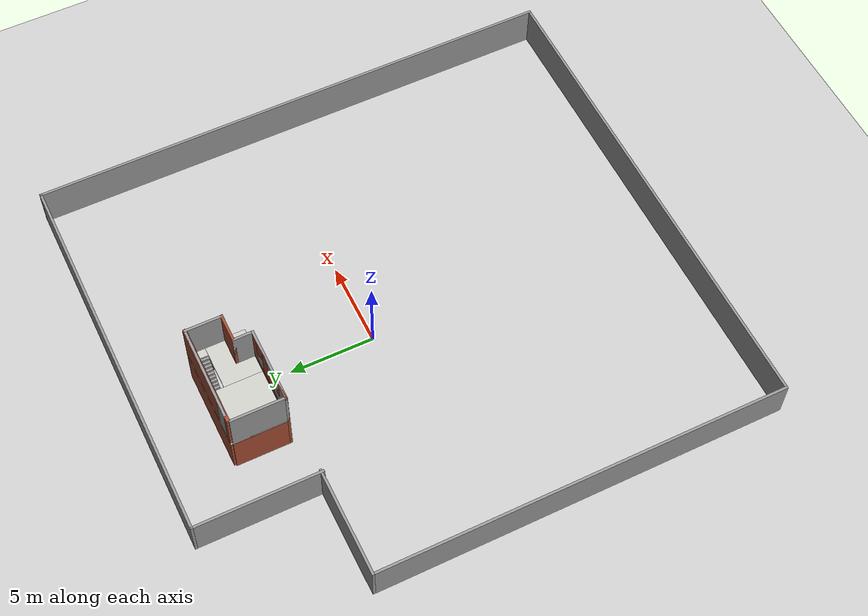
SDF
<sdf version="1.7">
 <world name="default">
  <model name="ground_plane">
   <static>1</static>
   <link name="link">
    <collision name="collision">
     <geometry><plane><normal>0 0 1</normal><size>100 100</size></plane></geometry>
     <surface><friction><ode><mu>100</mu><mu2>50</mu2></ode></friction></surface>
    </collision>
    <visual name="visual">
     <cast_shadows>0</cast_shadows>
     <geometry><plane><normal>0 0 1</normal><size>100 100</size></plane></geometry>
     <material>
      <script><uri>file://media/materials/scripts/gazebo.material</uri><name>Gazebo/Grey</name></script>
     </material>
    </visual>
   </link>
  </model>
  <model name="my_building_1">
   <pose>-0.887527 9.11564 0 0 -0 0</pose>
   <link name="Floor_0">
    <pose>-0 -0.802297 2.5 0 -0 0</pose>
    <visual name="Floor_0_Visual_0">
     <pose>-1.405 0 0.05 0 -0 0</pose>
     <geometry><box><size>3.315 3.38041 0.1</size></box></geometry>
     <material>
      <script><uri>file://media/materials/scripts/gazebo.material</uri><name>Gazebo/CeilingTiled</name></script>
      <ambient>1 1 1 1</ambient>
     </material>
     <meta><layer>1</layer></meta>
    </visual>
    <collision name="Floor_0_Collision_0">
     <geometry><box><size>3.315 3.38041 0.1</size></box></geometry>
     <pose>-1.405 0 0.05 0 -0 0</pose>
    </collision>
    <visual name="Floor_0_Visual_1">
     <pose>1.6575 -0.492703 0.05 0 -0 0</pose>
     <geometry><box><size>2.81 2.395 0.1</size></box></geometry>
     <material>
      <script><uri>file://media/materials/scripts/gazebo.material</uri><name>Gazebo/CeilingTiled</name></script>
      <ambient>1 1 1 1</ambient>
     </material>
     <meta><layer>1</layer></meta>
    </visual>
    <collision name="Floor_0_Collision_1">
     <geometry><box><size>2.81 2.395 0.1</size></box></geometry>
     <pose>1.6575 -0.492703 0.05 0 -0 0</pose>
    </collision>
    <visual name="Floor_0_Visual_2">
     <pose>2.7375 1.1975 0.05 0 -0 0</pose>
     <geometry><box><size>0.65 0.985407 0.1</size></box></geometry>
     <material>
      <script><uri>file://media/materials/scripts/gazebo.material</uri><name>Gazebo/CeilingTiled</name></script>
      <ambient>1 1 1 1</ambient>
     </material>
     <meta><layer>1</layer></meta>
    </visual>
    <collision name="Floor_0_Collision_2">
     <geometry><box><size>0.65 0.985407 0.1</size></box></geometry>
     <pose>2.7375 1.1975 0.05 0 -0 0</pose>
    </collision>
    <visual name="Floor_0_Visual_3">
     <pose>1.3325 1.5275 0.05 0 -0 0</pose>
     <geometry><box><size>2.16 0.325407 0.1</size></box></geometry>
     <material>
      <script><uri>file://media/materials/scripts/gazebo.material</uri><name>Gazebo/CeilingTiled</name></script>
      <ambient>1 1 1 1</ambient>
     </material>
     <meta><layer>1</layer></meta>
    </visual>
    <collision name="Floor_0_Collision_3">
     <geometry><box><size>2.16 0.325407 0.1</size></box></geometry>
     <pose>1.3325 1.5275 0.05 0 -0 0</pose>
    </collision>
   </link>
   <link name="Stairs_0">
    <visual name="Stairs_0_Visual_0">
     <pose>0.3245 0.2325 0.083333 0 -0 1.5708</pose>
     <geometry><box><size>0.66 0.144 0.166667</size></box></geometry>
     <material>
      <script><uri>file://media/materials/scripts/gazebo.material</uri><name>Gazebo/Grey</name></script>
      <ambient>1 1 1 1</ambient>
     </material>
     <meta><layer>0</layer></meta>
    </visual>
    <collision name="Stairs_0_Collision_0">
     <geometry><box><size>0.66 0.144 0.166667</size></box></geometry>
     <pose>0.3245 0.2325 0.083333 0 -0 1.5708</pose>
    </collision>
    <visual name="Stairs_0_Visual_1">
     <pose>0.4685 0.2325 0.25 0 -0 1.5708</pose>
     <geometry><box><size>0.66 0.144 0.166667</size></box></geometry>
     <material>
      <script><uri>file://media/materials/scripts/gazebo.material</uri><name>Gazebo/Grey</name></script>
      <ambient>1 1 1 1</ambient>
     </material>
     <meta><layer>0</layer></meta>
    </visual>
    <collision name="Stairs_0_Collision_1">
     <geometry><box><size>0.66 0.144 0.166667</size></box></geometry>
     <pose>0.4685 0.2325 0.25 0 -0 1.5708</pose>
    </collision>
    <visual name="Stairs_0_Visual_2">
     <pose>0.6125 0.2325 0.416667 0 -0 1.5708</pose>
     <geometry><box><size>0.66 0.144 0.166667</size></box></geometry>
     <material>
      <script><uri>file://media/materials/scripts/gazebo.material</uri><name>Gazebo/Grey</name></script>
      <ambient>1 1 1 1</ambient>
     </material>
     <meta><layer>0</layer></meta>
    </visual>
    <collision name="Stairs_0_Collision_2">
     <geometry><box><size>0.66 0.144 0.166667</size></box></geometry>
     <pose>0.6125 0.2325 0.416667 0 -0 1.5708</pose>
    </collision>
    <visual name="Stairs_0_Visual_3">
     <pose>0.7565 0.2325 0.583333 0 -0 1.5708</pose>
     <geometry><box><size>0.66 0.144 0.166667</size></box></geometry>
     <material>
      <script><uri>file://media/materials/scripts/gazebo.material</uri><name>Gazebo/Grey</name></script>
      <ambient>1 1 1 1</ambient>
     </material>
     <meta><layer>0</layer></meta>
    </visual>
    <collision name="Stairs_0_Collision_3">
     <geometry><box><size>0.66 0.144 0.166667</size></box></geometry>
     <pose>0.7565 0.2325 0.583333 0 -0 1.5708</pose>
    </collision>
    <visual name="Stairs_0_Visual_4">
     <pose>0.9005 0.2325 0.75 0 -0 1.5708</pose>
     <geometry><box><size>0.66 0.144 0.166667</size></box></geometry>
     <material>
      <script><uri>file://media/materials/scripts/gazebo.material</uri><name>Gazebo/Grey</name></script>
      <ambient>1 1 1 1</ambient>
     </material>
     <meta><layer>0</layer></meta>
    </visual>
    <collision name="Stairs_0_Collision_4">
     <geometry><box><size>0.66 0.144 0.166667</size></box></geometry>
     <pose>0.9005 0.2325 0.75 0 -0 1.5708</pose>
    </collision>
    <visual name="Stairs_0_Visual_5">
     <pose>1.0445 0.2325 0.916667 0 -0 1.5708</pose>
     <geometry><box><size>0.66 0.144 0.166667</size></box></geometry>
     <material>
      <script><uri>file://media/materials/scripts/gazebo.material</uri><name>Gazebo/Grey</name></script>
      <ambient>1 1 1 1</ambient>
     </material>
     <meta><layer>0</layer></meta>
    </visual>
    <collision name="Stairs_0_Collision_5">
     <geometry><box><size>0.66 0.144 0.166667</size></box></geometry>
     <pose>1.0445 0.2325 0.916667 0 -0 1.5708</pose>
    </collision>
    <visual name="Stairs_0_Visual_6">
     <pose>1.1885 0.2325 1.08333 0 -0 1.5708</pose>
     <geometry><box><size>0.66 0.144 0.166667</size></box></geometry>
     <material>
      <script><uri>file://media/materials/scripts/gazebo.material</uri><name>Gazebo/Grey</name></script>
      <ambient>1 1 1 1</ambient>
     </material>
     <meta><layer>0</layer></meta>
    </visual>
    <collision name="Stairs_0_Collision_6">
     <geometry><box><size>0.66 0.144 0.166667</size></box></geometry>
     <pose>1.1885 0.2325 1.08333 0 -0 1.5708</pose>
    </collision>
    <visual name="Stairs_0_Visual_7">
     <pose>1.3325 0.2325 1.25 0 -0 1.5708</pose>
     <geometry><box><size>0.66 0.144 0.166667</size></box></geometry>
     <material>
      <script><uri>file://media/materials/scripts/gazebo.material</uri><name>Gazebo/Grey</name></script>
      <ambient>1 1 1 1</ambient>
     </material>
     <meta><layer>0</layer></meta>
    </visual>
    <collision name="Stairs_0_Collision_7">
     <geometry><box><size>0.66 0.144 0.166667</size></box></geometry>
     <pose>1.3325 0.2325 1.25 0 -0 1.5708</pose>
    </collision>
    <visual name="Stairs_0_Visual_8">
     <pose>1.4765 0.2325 1.41667 0 -0 1.5708</pose>
     <geometry><box><size>0.66 0.144 0.166667</size></box></geometry>
     <material>
      <script><uri>file://media/materials/scripts/gazebo.material</uri><name>Gazebo/Grey</name></script>
      <ambient>1 1 1 1</ambient>
     </material>
     <meta><layer>0</layer></meta>
    </visual>
    <collision name="Stairs_0_Collision_8">
     <geometry><box><size>0.66 0.144 0.166667</size></box></geometry>
     <pose>1.4765 0.2325 1.41667 0 -0 1.5708</pose>
    </collision>
    <visual name="Stairs_0_Visual_9">
     <pose>1.6205 0.2325 1.58333 0 -0 1.5708</pose>
     <geometry><box><size>0.66 0.144 0.166667</size></box></geometry>
     <material>
      <script><uri>file://media/materials/scripts/gazebo.material</uri><name>Gazebo/Grey</name></script>
      <ambient>1 1 1 1</ambient>
     </material>
     <meta><layer>0</layer></meta>
    </visual>
    <collision name="Stairs_0_Collision_9">
     <geometry><box><size>0.66 0.144 0.166667</size></box></geometry>
     <pose>1.6205 0.2325 1.58333 0 -0 1.5708</pose>
    </collision>
    <visual name="Stairs_0_Visual_10">
     <pose>1.7645 0.2325 1.75 0 -0 1.5708</pose>
     <geometry><box><size>0.66 0.144 0.166667</size></box></geometry>
     <material>
      <script><uri>file://media/materials/scripts/gazebo.material</uri><name>Gazebo/Grey</name></script>
      <ambient>1 1 1 1</ambient>
     </material>
     <meta><layer>0</layer></meta>
    </visual>
    <collision name="Stairs_0_Collision_10">
     <geometry><box><size>0.66 0.144 0.166667</size></box></geometry>
     <pose>1.7645 0.2325 1.75 0 -0 1.5708</pose>
    </collision>
    <visual name="Stairs_0_Visual_11">
     <pose>1.9085 0.2325 1.91667 0 -0 1.5708</pose>
     <geometry><box><size>0.66 0.144 0.166667</size></box></geometry>
     <material>
      <script><uri>file://media/materials/scripts/gazebo.material</uri><name>Gazebo/Grey</name></script>
      <ambient>1 1 1 1</ambient>
     </material>
     <meta><layer>0</layer></meta>
    </visual>
    <collision name="Stairs_0_Collision_11">
     <geometry><box><size>0.66 0.144 0.166667</size></box></geometry>
     <pose>1.9085 0.2325 1.91667 0 -0 1.5708</pose>
    </collision>
    <visual name="Stairs_0_Visual_12">
     <pose>2.0525 0.2325 2.08333 0 -0 1.5708</pose>
     <geometry><box><size>0.66 0.144 0.166667</size></box></geometry>
     <material>
      <script><uri>file://media/materials/scripts/gazebo.material</uri><name>Gazebo/Grey</name></script>
      <ambient>1 1 1 1</ambient>
     </material>
     <meta><layer>0</layer></meta>
    </visual>
    <collision name="Stairs_0_Collision_12">
     <geometry><box><size>0.66 0.144 0.166667</size></box></geometry>
     <pose>2.0525 0.2325 2.08333 0 -0 1.5708</pose>
    </collision>
    <visual name="Stairs_0_Visual_13">
     <pose>2.1965 0.2325 2.25 0 -0 1.5708</pose>
     <geometry><box><size>0.66 0.144 0.166667</size></box></geometry>
     <material>
      <script><uri>file://media/materials/scripts/gazebo.material</uri><name>Gazebo/Grey</name></script>
      <ambient>1 1 1 1</ambient>
     </material>
     <meta><layer>0</layer></meta>
    </visual>
    <collision name="Stairs_0_Collision_13">
     <geometry><box><size>0.66 0.144 0.166667</size></box></geometry>
     <pose>2.1965 0.2325 2.25 0 -0 1.5708</pose>
    </collision>
    <visual name="Stairs_0_Visual_14">
     <pose>2.3405 0.2325 2.41667 0 -0 1.5708</pose>
     <geometry><box><size>0.66 0.144 0.166667</size></box></geometry>
     <material>
      <script><uri>file://media/materials/scripts/gazebo.material</uri><name>Gazebo/Grey</name></script>
      <ambient>1 1 1 1</ambient>
     </material>
     <meta><layer>0</layer></meta>
    </visual>
    <collision name="Stairs_0_Collision_14">
     <geometry><box><size>0.66 0.144 0.166667</size></box></geometry>
     <pose>2.3405 0.2325 2.41667 0 -0 1.5708</pose>
    </collision>
   </link>
   <link name="Wall_0">
    <collision name="Wall_0_Collision">
     <geometry><box><size>6.05 0.2 2.5</size></box></geometry>
     <pose>0 0 1.25 0 -0 0</pose>
    </collision>
    <visual name="Wall_0_Visual">
     <pose>0 0 1.25 0 -0 0</pose>
     <geometry><box><size>6.05 0.2 2.5</size></box></geometry>
     <material>
      <script><uri>file://media/materials/scripts/gazebo.material</uri><name>Gazebo/Bricks</name></script>
      <ambient>1 1 1 1</ambient>
     </material>
     <meta><layer>0</layer></meta>
    </visual>
    <pose>0.0375 0.7825 0 0 -0 0</pose>
   </link>
   <link name="Wall_1">
    <collision name="Wall_1_Collision">
     <geometry><box><size>2.25 0.15 1.5</size></box></geometry>
     <pose>0 0 0.75 0 -0 0</pose>
    </collision>
    <visual name="Wall_1_Visual">
     <pose>0 0 0.75 0 -0 0</pose>
     <geometry><box><size>2.25 0.15 1.5</size></box></geometry>
     <material>
      <script><uri>file://media/materials/scripts/gazebo.material</uri><name>Gazebo/Bricks</name></script>
      <ambient>1 1 1 1</ambient>
     </material>
     <meta><layer>0</layer></meta>
    </visual>
    <pose>2.9625 -0.2675 0 0 -0 -1.5708</pose>
   </link>
   <link name="Wall_10">
    <collision name="Wall_10_Collision">
     <geometry><box><size>1.25 0.15 2.5</size></box></geometry>
     <pose>0 0 1.25 0 -0 0</pose>
    </collision>
    <visual name="Wall_10_Visual">
     <pose>0 0 1.25 0 -0 0</pose>
     <geometry><box><size>1.25 0.15 2.5</size></box></geometry>
     <material>
      <script><uri>file://media/materials/scripts/gazebo.material</uri><name>Gazebo/Grey</name></script>
      <ambient>1 1 1 1</ambient>
     </material>
     <meta><layer>1</layer></meta>
    </visual>
    <pose>1.3625 -1.8675 2.5 0 -0 -1.5708</pose>
   </link>
   <link name="Wall_11">
    <collision name="Wall_11_Collision">
     <geometry><box><size>4.5 0.15 2.5</size></box></geometry>
     <pose>0 0 1.25 0 -0 0</pose>
    </collision>
    <visual name="Wall_11_Visual">
     <pose>0 0 1.25 0 -0 0</pose>
     <geometry><box><size>4.5 0.15 2.5</size></box></geometry>
     <material>
      <script><uri>file://media/materials/scripts/gazebo.material</uri><name>Gazebo/Grey</name></script>
      <ambient>1 1 1 1</ambient>
     </material>
     <meta><layer>1</layer></meta>
    </visual>
    <pose>-0.8125 -2.4175 2.5 0 -0 3.14159</pose>
   </link>
   <link name="Wall_12">
    <collision name="Wall_12_Collision">
     <geometry><box><size>3.25 0.15 2.5</size></box></geometry>
     <pose>0 0 1.25 0 -0 0</pose>
    </collision>
    <visual name="Wall_12_Visual">
     <pose>0 0 1.25 0 -0 0</pose>
     <geometry><box><size>3.25 0.15 2.5</size></box></geometry>
     <material>
      <script><uri>file://media/materials/scripts/gazebo.material</uri><name>Gazebo/Grey</name></script>
      <ambient>1 1 1 1</ambient>
     </material>
     <meta><layer>1</layer></meta>
    </visual>
    <pose>-2.9875 -0.8675 2.5 0 -0 1.5708</pose>
   </link>
   <link name="Wall_14">
    <collision name="Wall_14_Collision">
     <geometry><box><size>5.67008 0.15 2.5</size></box></geometry>
     <pose>0 0 1.25 0 -0 0</pose>
    </collision>
    <visual name="Wall_14_Visual">
     <pose>0 0 1.25 0 -0 0</pose>
     <geometry><box><size>5.67008 0.15 2.5</size></box></geometry>
     <material>
      <script><uri>file://media/materials/scripts/gazebo.material</uri><name>Gazebo/Grey</name></script>
      <ambient>1 1 1 1</ambient>
     </material>
     <meta><layer>1</layer></meta>
    </visual>
    <pose>0.2025 0.7975 2.5 0 -0 -0.005435</pose>
   </link>
   <link name="Wall_15">
    <collision name="Wall_15_Collision">
     <geometry><box><size>2.25 0.15 2.5</size></box></geometry>
     <pose>0 0 1.25 0 -0 0</pose>
    </collision>
    <visual name="Wall_15_Visual">
     <pose>0 0 1.25 0 -0 0</pose>
     <geometry><box><size>2.25 0.15 2.5</size></box></geometry>
     <material>
      <script><uri>file://media/materials/scripts/gazebo.material</uri><name>Gazebo/Grey</name></script>
      <ambient>1 1 1 1</ambient>
     </material>
     <meta><layer>1</layer></meta>
    </visual>
    <pose>2.9625 -0.2675 2.5 0 -0 -1.5708</pose>
   </link>
   <link name="Wall_16">
    <collision name="Wall_16_Collision">
     <geometry><box><size>1.75 0.15 2.5</size></box></geometry>
     <pose>0 0 1.25 0 -0 0</pose>
    </collision>
    <visual name="Wall_16_Visual">
     <pose>0 0 1.25 0 -0 0</pose>
     <geometry><box><size>1.75 0.15 2.5</size></box></geometry>
     <material>
      <script><uri>file://media/materials/scripts/gazebo.material</uri><name>Gazebo/Bricks</name></script>
      <ambient>1 1 1 1</ambient>
     </material>
     <meta><layer>1</layer></meta>
    </visual>
    <pose>2.1625 -1.3175 2.5 0 -0 3.14159</pose>
   </link>
   <link name="Wall_17">
    <collision name="Wall_17_Collision">
     <geometry><box><size>1.25 0.15 2.5</size></box></geometry>
     <pose>0 0 1.25 0 -0 0</pose>
    </collision>
    <visual name="Wall_17_Visual">
     <pose>0 0 1.25 0 -0 0</pose>
     <geometry><box><size>1.25 0.15 2.5</size></box></geometry>
     <material>
      <script><uri>file://media/materials/scripts/gazebo.material</uri><name>Gazebo/Grey</name></script>
      <ambient>1 1 1 1</ambient>
     </material>
     <meta><layer>1</layer></meta>
    </visual>
    <pose>1.3625 -1.8675 2.5 0 -0 -1.5708</pose>
   </link>
   <link name="Wall_18">
    <pose>-0.8125 -2.4175 2.5 0 -0 3.14159</pose>
    <visual name="Wall_18_Visual_0">
     <pose>-1.9275 0 1.25 0 -0 0</pose>
     <geometry><box><size>0.645 0.15 2.5</size></box></geometry>
     <material>
      <script><uri>file://media/materials/scripts/gazebo.material</uri><name>Gazebo/Bricks</name></script>
      <ambient>1 1 1 1</ambient>
     </material>
     <meta><layer>1</layer></meta>
    </visual>
    <collision name="Wall_18_Collision_0">
     <geometry><box><size>0.645 0.15 2.5</size></box></geometry>
     <pose>-1.9275 0 1.25 0 -0 0</pose>
    </collision>
    <visual name="Wall_18_Visual_1">
     <pose>0.3225 0 0.25 0 -0 0</pose>
     <geometry><box><size>3.855 0.15 0.5</size></box></geometry>
     <material>
      <script><uri>file://media/materials/scripts/gazebo.material</uri><name>Gazebo/Bricks</name></script>
      <ambient>1 1 1 1</ambient>
     </material>
     <meta><layer>1</layer></meta>
    </visual>
    <collision name="Wall_18_Collision_1">
     <geometry><box><size>3.855 0.15 0.5</size></box></geometry>
     <pose>0.3225 0 0.25 0 -0 0</pose>
    </collision>
    <visual name="Wall_18_Visual_2">
     <pose>-0.095 0 1.5 0 -0 0</pose>
     <geometry><box><size>1.42 0.15 2</size></box></geometry>
     <material>
      <script><uri>file://media/materials/scripts/gazebo.material</uri><name>Gazebo/Bricks</name></script>
      <ambient>1 1 1 1</ambient>
     </material>
     <meta><layer>1</layer></meta>
    </visual>
    <collision name="Wall_18_Collision_2">
     <geometry><box><size>1.42 0.15 2</size></box></geometry>
     <pose>-0.095 0 1.5 0 -0 0</pose>
    </collision>
    <visual name="Wall_18_Visual_3">
     <pose>1.8325 0 1.5 0 -0 0</pose>
     <geometry><box><size>0.835 0.15 2</size></box></geometry>
     <material>
      <script><uri>file://media/materials/scripts/gazebo.material</uri><name>Gazebo/Bricks</name></script>
      <ambient>1 1 1 1</ambient>
     </material>
     <meta><layer>1</layer></meta>
    </visual>
    <collision name="Wall_18_Collision_3">
     <geometry><box><size>0.835 0.15 2</size></box></geometry>
     <pose>1.8325 0 1.5 0 -0 0</pose>
    </collision>
    <visual name="Wall_18_Visual_4">
     <pose>-1.205 0 1.9 0 -0 0</pose>
     <geometry><box><size>0.8 0.15 1.2</size></box></geometry>
     <material>
      <script><uri>file://media/materials/scripts/gazebo.material</uri><name>Gazebo/Bricks</name></script>
      <ambient>1 1 1 1</ambient>
     </material>
     <meta><layer>1</layer></meta>
    </visual>
    <collision name="Wall_18_Collision_4">
     <geometry><box><size>0.8 0.15 1.2</size></box></geometry>
     <pose>-1.205 0 1.9 0 -0 0</pose>
    </collision>
    <visual name="Wall_18_Visual_5">
     <pose>1.015 0 1.9 0 -0 0</pose>
     <geometry><box><size>0.8 0.15 1.2</size></box></geometry>
     <material>
      <script><uri>file://media/materials/scripts/gazebo.material</uri><name>Gazebo/Bricks</name></script>
      <ambient>1 1 1 1</ambient>
     </material>
     <meta><layer>1</layer></meta>
    </visual>
    <collision name="Wall_18_Collision_5">
     <geometry><box><size>0.8 0.15 1.2</size></box></geometry>
     <pose>1.015 0 1.9 0 -0 0</pose>
    </collision>
   </link>
   <link name="Wall_19">
    <collision name="Wall_19_Collision">
     <geometry><box><size>3.25 0.15 2.5</size></box></geometry>
     <pose>0 0 1.25 0 -0 0</pose>
    </collision>
    <visual name="Wall_19_Visual">
     <pose>0 0 1.25 0 -0 0</pose>
     <geometry><box><size>3.25 0.15 2.5</size></box></geometry>
     <material>
      <script><uri>file://media/materials/scripts/gazebo.material</uri><name>Gazebo/Bricks</name></script>
      <ambient>1 1 1 1</ambient>
     </material>
     <meta><layer>1</layer></meta>
    </visual>
    <pose>-2.9875 -0.8675 2.5 0 -0 1.5708</pose>
   </link>
   <link name="Wall_2">
    <collision name="Wall_2_Collision">
     <geometry><box><size>1.75 0.15 2.5</size></box></geometry>
     <pose>0 0 1.25 0 -0 0</pose>
    </collision>
    <visual name="Wall_2_Visual">
     <pose>0 0 1.25 0 -0 0</pose>
     <geometry><box><size>1.75 0.15 2.5</size></box></geometry>
     <material>
      <script><uri>file://media/materials/scripts/gazebo.material</uri><name>Gazebo/Bricks</name></script>
      <ambient>1 1 1 1</ambient>
     </material>
     <meta><layer>0</layer></meta>
    </visual>
    <pose>2.1625 -1.3175 0 0 -0 3.14159</pose>
   </link>
   <link name="Wall_3">
    <collision name="Wall_3_Collision">
     <geometry><box><size>1.25 0.15 2.5</size></box></geometry>
     <pose>0 0 1.25 0 -0 0</pose>
    </collision>
    <visual name="Wall_3_Visual">
     <pose>0 0 1.25 0 -0 0</pose>
     <geometry><box><size>1.25 0.15 2.5</size></box></geometry>
     <material>
      <script><uri>file://media/materials/scripts/gazebo.material</uri><name>Gazebo/Grey</name></script>
      <ambient>1 1 1 1</ambient>
     </material>
     <meta><layer>0</layer></meta>
    </visual>
    <pose>1.3625 -1.8675 0 0 -0 -1.5708</pose>
   </link>
   <link name="Wall_4">
    <pose>-0.8125 -2.4175 0 0 -0 3.14159</pose>
    <visual name="Wall_4_Visual_0">
     <pose>-1.4025 0 1.25 0 -0 0</pose>
     <geometry><box><size>1.695 0.15 2.5</size></box></geometry>
     <material>
      <script><uri>file://media/materials/scripts/gazebo.material</uri><name>Gazebo/Bricks</name></script>
      <ambient>1 1 1 1</ambient>
     </material>
     <meta><layer>0</layer></meta>
    </visual>
    <collision name="Wall_4_Collision_0">
     <geometry><box><size>1.695 0.15 2.5</size></box></geometry>
     <pose>-1.4025 0 1.25 0 -0 0</pose>
    </collision>
    <visual name="Wall_4_Visual_1">
     <pose>0.54 0 1.25 0 -0 0</pose>
     <geometry><box><size>0.39 0.15 2.5</size></box></geometry>
     <material>
      <script><uri>file://media/materials/scripts/gazebo.material</uri><name>Gazebo/Bricks</name></script>
      <ambient>1 1 1 1</ambient>
     </material>
     <meta><layer>0</layer></meta>
    </visual>
    <collision name="Wall_4_Collision_1">
     <geometry><box><size>0.39 0.15 2.5</size></box></geometry>
     <pose>0.54 0 1.25 0 -0 0</pose>
    </collision>
    <visual name="Wall_4_Visual_2">
     <pose>1.4925 0 0.25 0 -0 0</pose>
     <geometry><box><size>1.515 0.15 0.5</size></box></geometry>
     <material>
      <script><uri>file://media/materials/scripts/gazebo.material</uri><name>Gazebo/Bricks</name></script>
      <ambient>1 1 1 1</ambient>
     </material>
     <meta><layer>0</layer></meta>
    </visual>
    <collision name="Wall_4_Collision_2">
     <geometry><box><size>1.515 0.15 0.5</size></box></geometry>
     <pose>1.4925 0 0.25 0 -0 0</pose>
    </collision>
    <visual name="Wall_4_Visual_3">
     <pose>1.8925 0 1.5 0 -0 0</pose>
     <geometry><box><size>0.715 0.15 2</size></box></geometry>
     <material>
      <script><uri>file://media/materials/scripts/gazebo.material</uri><name>Gazebo/Bricks</name></script>
      <ambient>1 1 1 1</ambient>
     </material>
     <meta><layer>0</layer></meta>
    </visual>
    <collision name="Wall_4_Collision_3">
     <geometry><box><size>0.715 0.15 2</size></box></geometry>
     <pose>1.8925 0 1.5 0 -0 0</pose>
    </collision>
    <visual name="Wall_4_Visual_4">
     <pose>1.135 0 1.9 0 -0 0</pose>
     <geometry><box><size>0.8 0.15 1.2</size></box></geometry>
     <material>
      <script><uri>file://media/materials/scripts/gazebo.material</uri><name>Gazebo/Bricks</name></script>
      <ambient>1 1 1 1</ambient>
     </material>
     <meta><layer>0</layer></meta>
    </visual>
    <collision name="Wall_4_Collision_4">
     <geometry><box><size>0.8 0.15 1.2</size></box></geometry>
     <pose>1.135 0 1.9 0 -0 0</pose>
    </collision>
    <visual name="Wall_4_Visual_5">
     <pose>-0.105 0 2.25 0 -0 0</pose>
     <geometry><box><size>0.9 0.15 0.5</size></box></geometry>
     <material>
      <script><uri>file://media/materials/scripts/gazebo.material</uri><name>Gazebo/Bricks</name></script>
      <ambient>1 1 1 1</ambient>
     </material>
     <meta><layer>0</layer></meta>
    </visual>
    <collision name="Wall_4_Collision_5">
     <geometry><box><size>0.9 0.15 0.5</size></box></geometry>
     <pose>-0.105 0 2.25 0 -0 0</pose>
    </collision>
   </link>
   <link name="Wall_5">
    <collision name="Wall_5_Collision">
     <geometry><box><size>3.25 0.15 2.5</size></box></geometry>
     <pose>0 0 1.25 0 -0 0</pose>
    </collision>
    <visual name="Wall_5_Visual">
     <pose>0 0 1.25 0 -0 0</pose>
     <geometry><box><size>3.25 0.15 2.5</size></box></geometry>
     <material>
      <script><uri>file://media/materials/scripts/gazebo.material</uri><name>Gazebo/Bricks</name></script>
      <ambient>1 1 1 1</ambient>
     </material>
     <meta><layer>0</layer></meta>
    </visual>
    <pose>-2.9875 -0.8675 0 0 -0 1.5708</pose>
   </link>
   <link name="Wall_7">
    <collision name="Wall_7_Collision">
     <geometry><box><size>6.05 0.2 2.5</size></box></geometry>
     <pose>0 0 1.25 0 -0 0</pose>
    </collision>
    <visual name="Wall_7_Visual">
     <pose>0 0 1.25 0 -0 0</pose>
     <geometry><box><size>6.05 0.2 2.5</size></box></geometry>
     <material>
      <script><uri>file://media/materials/scripts/gazebo.material</uri><name>Gazebo/Bricks</name></script>
      <ambient>1 1 1 1</ambient>
     </material>
     <meta><layer>1</layer></meta>
    </visual>
    <pose>0.0375 0.7825 2.5 0 -0 0</pose>
   </link>
   <link name="Wall_8">
    <collision name="Wall_8_Collision">
     <geometry><box><size>2.25 0.15 1.5</size></box></geometry>
     <pose>0 0 0.75 0 -0 0</pose>
    </collision>
    <visual name="Wall_8_Visual">
     <pose>0 0 0.75 0 -0 0</pose>
     <geometry><box><size>2.25 0.15 1.5</size></box></geometry>
     <material>
      <script><uri>file://media/materials/scripts/gazebo.material</uri><name>Gazebo/Grey</name></script>
      <ambient>1 1 1 1</ambient>
     </material>
     <meta><layer>1</layer></meta>
    </visual>
    <pose>2.9625 -0.2675 2.5 0 -0 -1.5708</pose>
   </link>
   <link name="Wall_9">
    <collision name="Wall_9_Collision">
     <geometry><box><size>1.75 0.15 2.5</size></box></geometry>
     <pose>0 0 1.25 0 -0 0</pose>
    </collision>
    <visual name="Wall_9_Visual">
     <pose>0 0 1.25 0 -0 0</pose>
     <geometry><box><size>1.75 0.15 2.5</size></box></geometry>
     <material>
      <script><uri>file://media/materials/scripts/gazebo.material</uri><name>Gazebo/Grey</name></script>
      <ambient>1 1 1 1</ambient>
     </material>
     <meta><layer>1</layer></meta>
    </visual>
    <pose>2.1625 -1.3175 2.5 0 -0 3.14159</pose>
   </link>
   <static>1</static>
  </model>
  <model name="my_wall">
   <pose>0.944283 -2.1803 0 0 -0 0</pose>
   <link name="Wall_26">
    <collision name="Wall_26_Collision">
     <geometry><box><size>6.5 0.15 2.5</size></box></geometry>
     <pose>0 0 1.25 0 -0 0</pose>
    </collision>
    <visual name="Wall_26_Visual">
     <pose>0 0 1.25 0 -0 0</pose>
     <geometry><box><size>6.5 0.15 2.5</size></box></geometry>
     <material>
      <script><uri>file://media/materials/scripts/gazebo.material</uri><name>Gazebo/Grey</name></script>
      <ambient>1 1 1 1</ambient>
     </material>
     <meta><layer>0</layer></meta>
    </visual>
    <pose>-11.375 8.55 0 0 -0 3.14159</pose>
   </link>
   <link name="Wall_27">
    <collision name="Wall_27_Collision">
     <geometry><box><size>24.5 0.15 2.5</size></box></geometry>
     <pose>0 0 1.25 0 -0 0</pose>
    </collision>
    <visual name="Wall_27_Visual">
     <pose>0 0 1.25 0 -0 0</pose>
     <geometry><box><size>24.5 0.15 2.5</size></box></geometry>
     <material>
      <script><uri>file://media/materials/scripts/gazebo.material</uri><name>Gazebo/Grey</name></script>
      <ambient>1 1 1 1</ambient>
     </material>
     <meta><layer>0</layer></meta>
    </visual>
    <pose>-14.55 -3.625 0 0 -0 -1.5708</pose>
   </link>
   <link name="Wall_28">
    <collision name="Wall_28_Collision">
     <geometry><box><size>29.25 0.15 2.5</size></box></geometry>
     <pose>0 0 1.25 0 -0 0</pose>
    </collision>
    <visual name="Wall_28_Visual">
     <pose>0 0 1.25 0 -0 0</pose>
     <geometry><box><size>29.25 0.15 2.5</size></box></geometry>
     <material>
      <script><uri>file://media/materials/scripts/gazebo.material</uri><name>Gazebo/Grey</name></script>
      <ambient>1 1 1 1</ambient>
     </material>
     <meta><layer>0</layer></meta>
    </visual>
    <pose>-0 -15.8 0 0 -0 0</pose>
   </link>
   <link name="Wall_29">
    <collision name="Wall_29_Collision">
     <geometry><box><size>31.75 0.15 2.5</size></box></geometry>
     <pose>0 0 1.25 0 -0 0</pose>
    </collision>
    <visual name="Wall_29_Visual">
     <pose>0 0 1.25 0 -0 0</pose>
     <geometry><box><size>31.75 0.15 2.5</size></box></geometry>
     <material>
      <script><uri>file://media/materials/scripts/gazebo.material</uri><name>Gazebo/Grey</name></script>
      <ambient>1 1 1 1</ambient>
     </material>
     <meta><layer>0</layer></meta>
    </visual>
    <pose>14.55 -0 0 0 -0 1.5708</pose>
   </link>
   <link name="Wall_30">
    <collision name="Wall_30_Collision">
     <geometry><box><size>23 0.15 2.5</size></box></geometry>
     <pose>0 0 1.25 0 -0 0</pose>
    </collision>
    <visual name="Wall_30_Visual">
     <pose>0 0 1.25 0 -0 0</pose>
     <geometry><box><size>23 0.15 2.5</size></box></geometry>
     <material>
      <script><uri>file://media/materials/scripts/gazebo.material</uri><name>Gazebo/Grey</name></script>
      <ambient>1 1 1 1</ambient>
     </material>
     <meta><layer>0</layer></meta>
    </visual>
    <pose>3.125 15.8 0 0 -0 3.14159</pose>
   </link>
   <link name="Wall_31">
    <collision name="Wall_31_Collision">
     <geometry><box><size>7.5 0.15 2.5</size></box></geometry>
     <pose>0 0 1.25 0 -0 0</pose>
    </collision>
    <visual name="Wall_31_Visual">
     <pose>0 0 1.25 0 -0 0</pose>
     <geometry><box><size>7.5 0.15 2.5</size></box></geometry>
     <material>
      <script><uri>file://media/materials/scripts/gazebo.material</uri><name>Gazebo/Grey</name></script>
      <ambient>1 1 1 1</ambient>
     </material>
     <meta><layer>0</layer></meta>
    </visual>
    <pose>-8.3 12.125 0 0 -0 -1.5708</pose>
   </link>
   <static>1</static>
  </model>
 </world>
</sdf>
